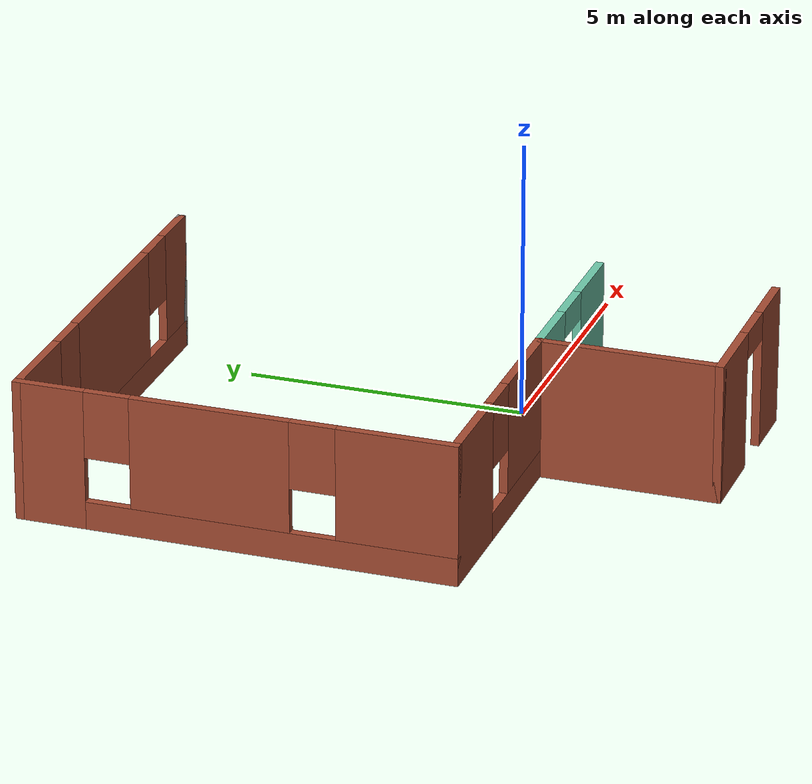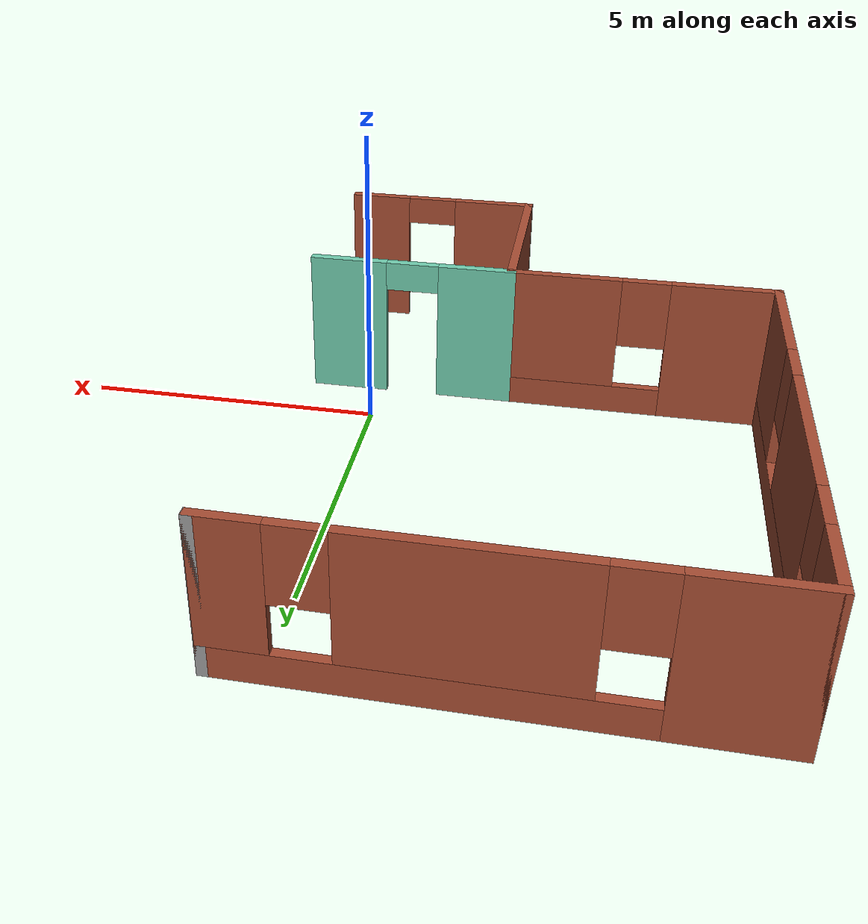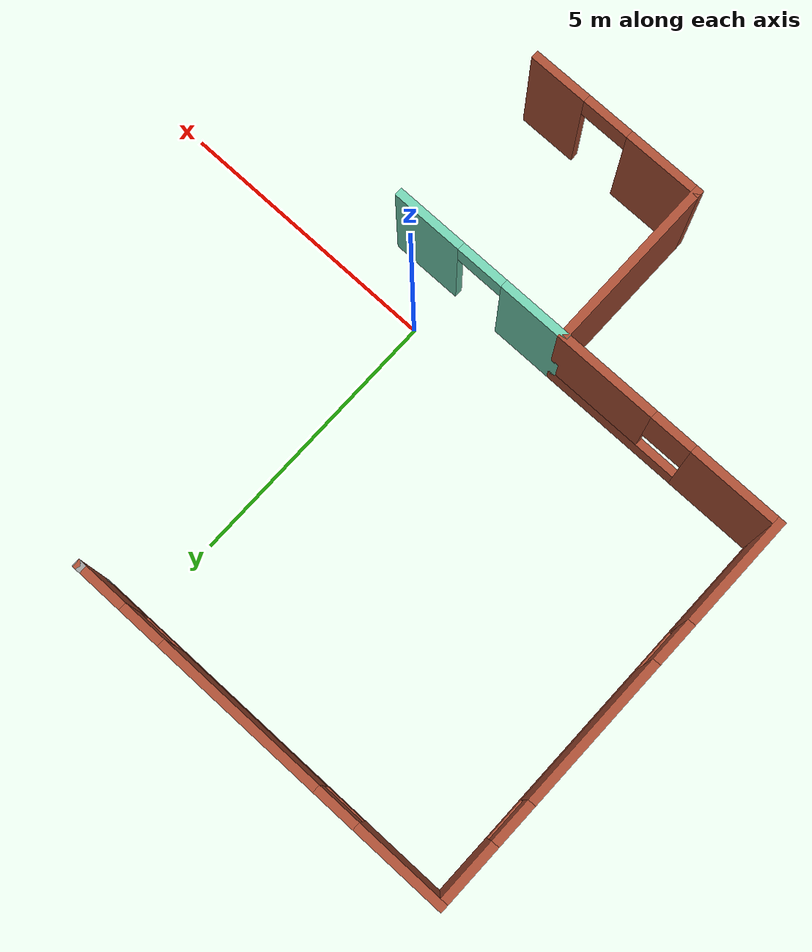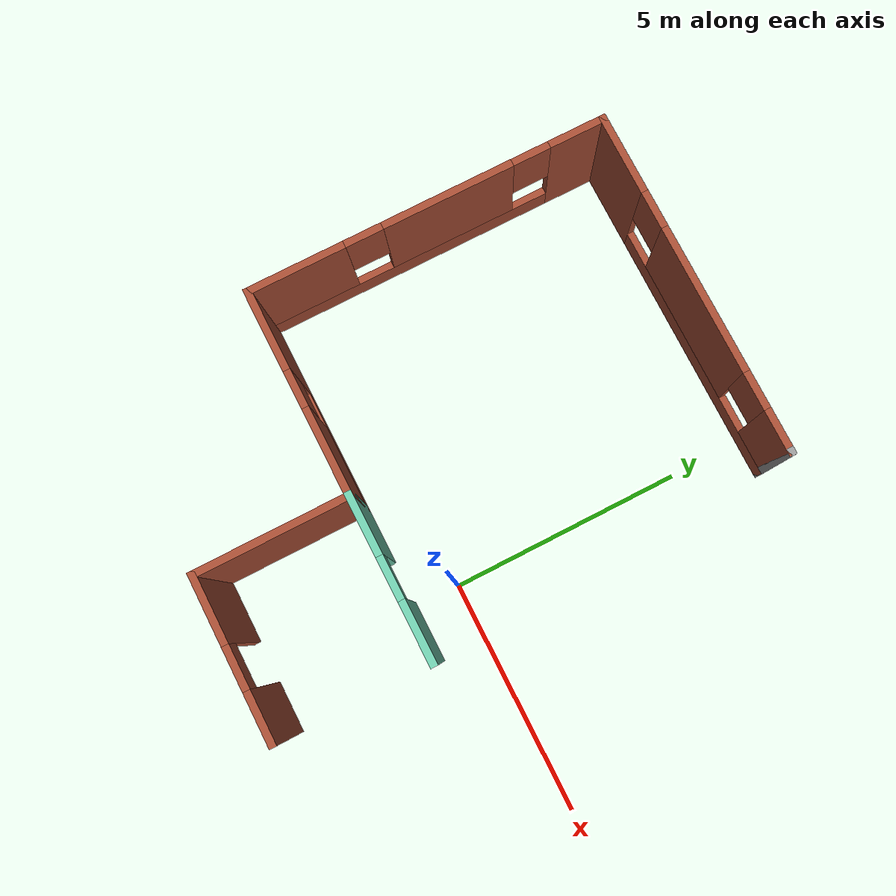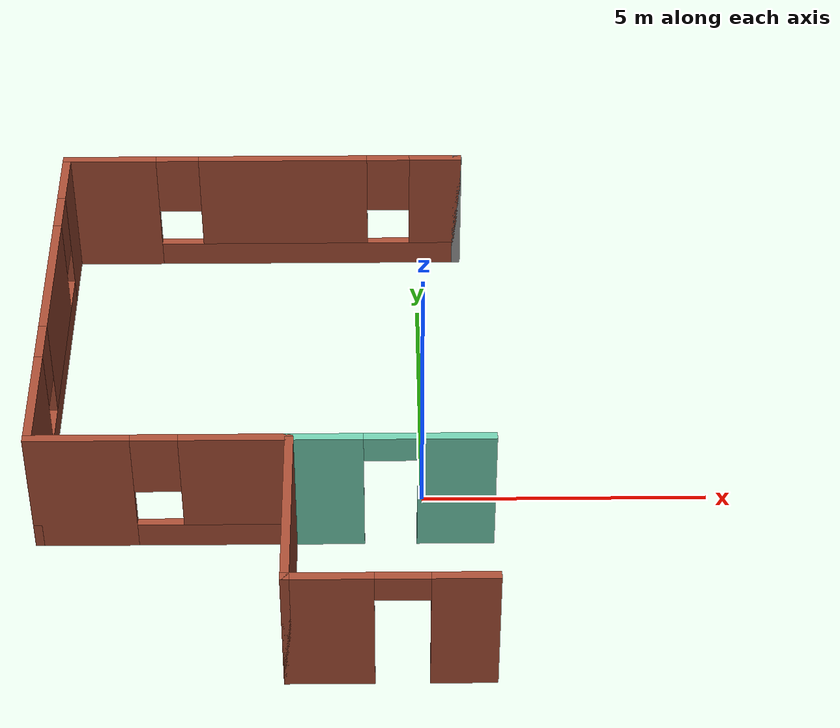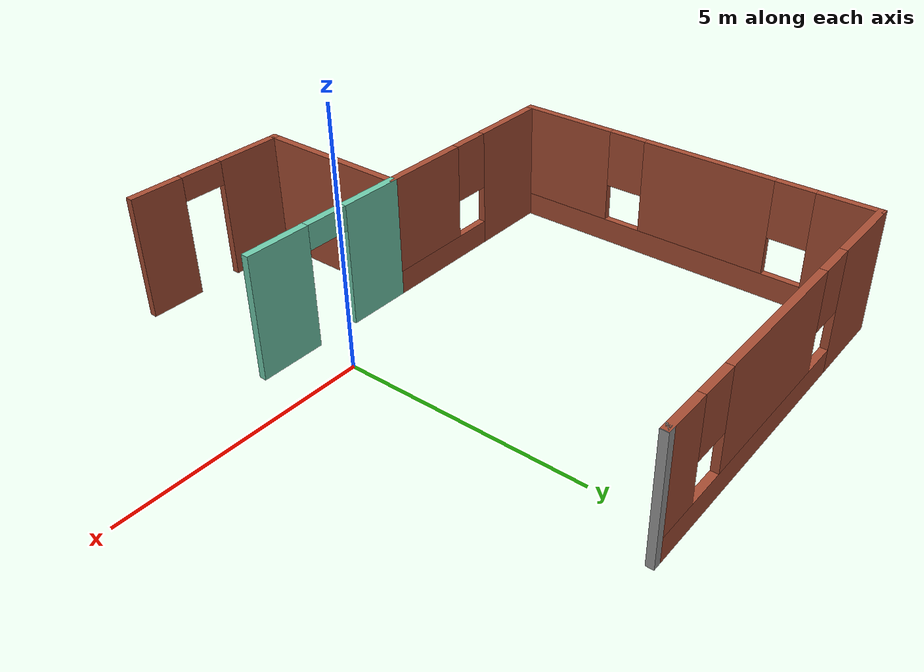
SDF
<sdf version="1.6">
 <model name="myWorld">
  <link name="Wall_0">
   <pose>-2.93 6.60073 0 0 -0 0</pose>
   <visual name="Wall_0_Visual_0">
    <pose>-2.87473 0 1.25 0 -0 0</pose>
    <geometry><box><size>1.75055 0.15 2.5</size></box></geometry>
    <material>
     <script><uri>file://media/materials/scripts/gazebo.material</uri><name>Gazebo/Bricks</name></script>
     <ambient>1 1 1 1</ambient>
    </material>
    <meta><layer>0</layer></meta>
   </visual>
   <visual name="Wall_0_Visual_1">
    <pose>0.875274 0 0.25 0 -0 0</pose>
    <geometry><box><size>5.74945 0.15 0.5</size></box></geometry>
    <material>
     <script><uri>file://media/materials/scripts/gazebo.material</uri><name>Gazebo/Bricks</name></script>
     <ambient>1 1 1 1</ambient>
    </material>
    <meta><layer>0</layer></meta>
   </visual>
   <visual name="Wall_0_Visual_2">
    <pose>0.388147 0 1.5 0 -0 0</pose>
    <geometry><box><size>3.1752 0.15 2</size></box></geometry>
    <material>
     <script><uri>file://media/materials/scripts/gazebo.material</uri><name>Gazebo/Bricks</name></script>
     <ambient>1 1 1 1</ambient>
    </material>
    <meta><layer>0</layer></meta>
   </visual>
   <visual name="Wall_0_Visual_3">
    <pose>3.26287 0 1.5 0 -0 0</pose>
    <geometry><box><size>0.974253 0.15 2</size></box></geometry>
    <material>
     <script><uri>file://media/materials/scripts/gazebo.material</uri><name>Gazebo/Bricks</name></script>
     <ambient>1 1 1 1</ambient>
    </material>
    <meta><layer>0</layer></meta>
   </visual>
   <visual name="Wall_0_Visual_4">
    <pose>-1.59945 0 1.9 0 -0 0</pose>
    <geometry><box><size>0.8 0.15 1.2</size></box></geometry>
    <material>
     <script><uri>file://media/materials/scripts/gazebo.material</uri><name>Gazebo/Bricks</name></script>
     <ambient>1 1 1 1</ambient>
    </material>
    <meta><layer>0</layer></meta>
   </visual>
   <visual name="Wall_0_Visual_5">
    <pose>2.37575 0 1.9 0 -0 0</pose>
    <geometry><box><size>0.8 0.15 1.2</size></box></geometry>
    <material>
     <script><uri>file://media/materials/scripts/gazebo.material</uri><name>Gazebo/Bricks</name></script>
     <ambient>1 1 1 1</ambient>
    </material>
    <meta><layer>0</layer></meta>
   </visual>
   <collision name="Wall_0_Collision_2">
    <pose>0.388147 0 1.5 0 -0 0</pose>
    <geometry><box><size>3.1752 0.15 2</size></box></geometry>
    <surface>
     <friction>
      <ode><mu>1</mu><mu2>1</mu2><fdir1>0 0 0</fdir1><slip1>0</slip1><slip2>0</slip2></ode>
      <torsional>
       <coefficient>1</coefficient>
       <patch_radius>0</patch_radius>
       <surface_radius>0</surface_radius>
       <use_patch_radius>1</use_patch_radius>
       <ode><slip>0</slip></ode>
      </torsional>
     </friction>
     <bounce><restitution_coefficient>0</restitution_coefficient><threshold>1e+06</threshold></bounce>
     <contact>
      <collide_without_contact>0</collide_without_contact>
      <collide_without_contact_bitmask>1</collide_without_contact_bitmask>
      <collide_bitmask>1</collide_bitmask>
      <ode>
       <soft_cfm>0</soft_cfm>
       <soft_erp>0.2</soft_erp>
       <kp>1e+13</kp>
       <kd>1</kd>
       <max_vel>0.01</max_vel>
       <min_depth>0</min_depth>
      </ode>
      <bullet>
       <split_impulse>1</split_impulse>
       <split_impulse_penetration_threshold>-0.01</split_impulse_penetration_threshold>
       <soft_cfm>0</soft_cfm>
       <soft_erp>0.2</soft_erp>
       <kp>1e+13</kp>
       <kd>1</kd>
      </bullet>
     </contact>
    </surface>
   </collision>
   <collision name="Wall_0_Collision_0">
    <pose>-2.87473 0 1.25 0 -0 0</pose>
    <geometry><box><size>1.75055 0.15 2.5</size></box></geometry>
    <surface>
     <friction>
      <ode><mu>1</mu><mu2>1</mu2><fdir1>0 0 0</fdir1><slip1>0</slip1><slip2>0</slip2></ode>
      <torsional>
       <coefficient>1</coefficient>
       <patch_radius>0</patch_radius>
       <surface_radius>0</surface_radius>
       <use_patch_radius>1</use_patch_radius>
       <ode><slip>0</slip></ode>
      </torsional>
     </friction>
     <bounce><restitution_coefficient>0</restitution_coefficient><threshold>1e+06</threshold></bounce>
     <contact>
      <collide_without_contact>0</collide_without_contact>
      <collide_without_contact_bitmask>1</collide_without_contact_bitmask>
      <collide_bitmask>1</collide_bitmask>
      <ode>
       <soft_cfm>0</soft_cfm>
       <soft_erp>0.2</soft_erp>
       <kp>1e+13</kp>
       <kd>1</kd>
       <max_vel>0.01</max_vel>
       <min_depth>0</min_depth>
      </ode>
      <bullet>
       <split_impulse>1</split_impulse>
       <split_impulse_penetration_threshold>-0.01</split_impulse_penetration_threshold>
       <soft_cfm>0</soft_cfm>
       <soft_erp>0.2</soft_erp>
       <kp>1e+13</kp>
       <kd>1</kd>
      </bullet>
     </contact>
    </surface>
   </collision>
   <collision name="Wall_0_Collision_1">
    <pose>0.875274 0 0.25 0 -0 0</pose>
    <geometry><box><size>5.74945 0.15 0.5</size></box></geometry>
    <surface>
     <friction>
      <ode><mu>1</mu><mu2>1</mu2><fdir1>0 0 0</fdir1><slip1>0</slip1><slip2>0</slip2></ode>
      <torsional>
       <coefficient>1</coefficient>
       <patch_radius>0</patch_radius>
       <surface_radius>0</surface_radius>
       <use_patch_radius>1</use_patch_radius>
       <ode><slip>0</slip></ode>
      </torsional>
     </friction>
     <bounce><restitution_coefficient>0</restitution_coefficient><threshold>1e+06</threshold></bounce>
     <contact>
      <collide_without_contact>0</collide_without_contact>
      <collide_without_contact_bitmask>1</collide_without_contact_bitmask>
      <collide_bitmask>1</collide_bitmask>
      <ode>
       <soft_cfm>0</soft_cfm>
       <soft_erp>0.2</soft_erp>
       <kp>1e+13</kp>
       <kd>1</kd>
       <max_vel>0.01</max_vel>
       <min_depth>0</min_depth>
      </ode>
      <bullet>
       <split_impulse>1</split_impulse>
       <split_impulse_penetration_threshold>-0.01</split_impulse_penetration_threshold>
       <soft_cfm>0</soft_cfm>
       <soft_erp>0.2</soft_erp>
       <kp>1e+13</kp>
       <kd>1</kd>
      </bullet>
     </contact>
    </surface>
   </collision>
   <collision name="Wall_0_Collision_3">
    <pose>3.26287 0 1.5 0 -0 0</pose>
    <geometry><box><size>0.974253 0.15 2</size></box></geometry>
    <surface>
     <friction>
      <ode><mu>1</mu><mu2>1</mu2><fdir1>0 0 0</fdir1><slip1>0</slip1><slip2>0</slip2></ode>
      <torsional>
       <coefficient>1</coefficient>
       <patch_radius>0</patch_radius>
       <surface_radius>0</surface_radius>
       <use_patch_radius>1</use_patch_radius>
       <ode><slip>0</slip></ode>
      </torsional>
     </friction>
     <bounce><restitution_coefficient>0</restitution_coefficient><threshold>1e+06</threshold></bounce>
     <contact>
      <collide_without_contact>0</collide_without_contact>
      <collide_without_contact_bitmask>1</collide_without_contact_bitmask>
      <collide_bitmask>1</collide_bitmask>
      <ode>
       <soft_cfm>0</soft_cfm>
       <soft_erp>0.2</soft_erp>
       <kp>1e+13</kp>
       <kd>1</kd>
       <max_vel>0.01</max_vel>
       <min_depth>0</min_depth>
      </ode>
      <bullet>
       <split_impulse>1</split_impulse>
       <split_impulse_penetration_threshold>-0.01</split_impulse_penetration_threshold>
       <soft_cfm>0</soft_cfm>
       <soft_erp>0.2</soft_erp>
       <kp>1e+13</kp>
       <kd>1</kd>
      </bullet>
     </contact>
    </surface>
   </collision>
   <collision name="Wall_0_Collision_4">
    <pose>-1.59945 0 1.9 0 -0 0</pose>
    <geometry><box><size>0.8 0.15 1.2</size></box></geometry>
    <surface>
     <friction>
      <ode><mu>1</mu><mu2>1</mu2><fdir1>0 0 0</fdir1><slip1>0</slip1><slip2>0</slip2></ode>
      <torsional>
       <coefficient>1</coefficient>
       <patch_radius>0</patch_radius>
       <surface_radius>0</surface_radius>
       <use_patch_radius>1</use_patch_radius>
       <ode><slip>0</slip></ode>
      </torsional>
     </friction>
     <bounce><restitution_coefficient>0</restitution_coefficient><threshold>1e+06</threshold></bounce>
     <contact>
      <collide_without_contact>0</collide_without_contact>
      <collide_without_contact_bitmask>1</collide_without_contact_bitmask>
      <collide_bitmask>1</collide_bitmask>
      <ode>
       <soft_cfm>0</soft_cfm>
       <soft_erp>0.2</soft_erp>
       <kp>1e+13</kp>
       <kd>1</kd>
       <max_vel>0.01</max_vel>
       <min_depth>0</min_depth>
      </ode>
      <bullet>
       <split_impulse>1</split_impulse>
       <split_impulse_penetration_threshold>-0.01</split_impulse_penetration_threshold>
       <soft_cfm>0</soft_cfm>
       <soft_erp>0.2</soft_erp>
       <kp>1e+13</kp>
       <kd>1</kd>
      </bullet>
     </contact>
    </surface>
   </collision>
   <collision name="Wall_0_Collision_5">
    <pose>2.37575 0 1.9 0 -0 0</pose>
    <geometry><box><size>0.8 0.15 1.2</size></box></geometry>
    <surface>
     <friction>
      <ode><mu>1</mu><mu2>1</mu2><fdir1>0 0 0</fdir1><slip1>0</slip1><slip2>0</slip2></ode>
      <torsional>
       <coefficient>1</coefficient>
       <patch_radius>0</patch_radius>
       <surface_radius>0</surface_radius>
       <use_patch_radius>1</use_patch_radius>
       <ode><slip>0</slip></ode>
      </torsional>
     </friction>
     <bounce><restitution_coefficient>0</restitution_coefficient><threshold>1e+06</threshold></bounce>
     <contact>
      <collide_without_contact>0</collide_without_contact>
      <collide_without_contact_bitmask>1</collide_without_contact_bitmask>
      <collide_bitmask>1</collide_bitmask>
      <ode>
       <soft_cfm>0</soft_cfm>
       <soft_erp>0.2</soft_erp>
       <kp>1e+13</kp>
       <kd>1</kd>
       <max_vel>0.01</max_vel>
       <min_depth>0</min_depth>
      </ode>
      <bullet>
       <split_impulse>1</split_impulse>
       <split_impulse_penetration_threshold>-0.01</split_impulse_penetration_threshold>
       <soft_cfm>0</soft_cfm>
       <soft_erp>0.2</soft_erp>
       <kp>1e+13</kp>
       <kd>1</kd>
      </bullet>
     </contact>
    </surface>
   </collision>
  </link>
  <link name="Wall_1">
   <pose>0.75 6.60073 0 0 -0 0</pose>
   <visual name="Wall_1_Visual">
    <pose>0 0 1.25 0 -0 0</pose>
    <geometry><box><size>0.16 0.15 2.5</size></box></geometry>
    <material>
     <script><uri>file://media/materials/scripts/gazebo.material</uri><name>Gazebo/Grey</name></script>
     <ambient>1 1 1 1</ambient>
    </material>
    <meta><layer>0</layer></meta>
   </visual>
   <collision name="Wall_1_Collision">
    <pose>0 0 1.25 0 -0 0</pose>
    <geometry><box><size>0.16 0.15 2.5</size></box></geometry>
    <surface>
     <friction>
      <ode><mu>1</mu><mu2>1</mu2><fdir1>0 0 0</fdir1><slip1>0</slip1><slip2>0</slip2></ode>
      <torsional>
       <coefficient>1</coefficient>
       <patch_radius>0</patch_radius>
       <surface_radius>0</surface_radius>
       <use_patch_radius>1</use_patch_radius>
       <ode><slip>0</slip></ode>
      </torsional>
     </friction>
     <bounce><restitution_coefficient>0</restitution_coefficient><threshold>1e+06</threshold></bounce>
     <contact>
      <collide_without_contact>0</collide_without_contact>
      <collide_without_contact_bitmask>1</collide_without_contact_bitmask>
      <collide_bitmask>1</collide_bitmask>
      <ode>
       <soft_cfm>0</soft_cfm>
       <soft_erp>0.2</soft_erp>
       <kp>1e+13</kp>
       <kd>1</kd>
       <max_vel>0.01</max_vel>
       <min_depth>0</min_depth>
      </ode>
      <bullet>
       <split_impulse>1</split_impulse>
       <split_impulse_penetration_threshold>-0.01</split_impulse_penetration_threshold>
       <soft_cfm>0</soft_cfm>
       <soft_erp>0.2</soft_erp>
       <kp>1e+13</kp>
       <kd>1</kd>
      </bullet>
     </contact>
    </surface>
   </collision>
  </link>
  <link name="Wall_24">
   <pose>-6.605 2.80073 0 0 0 -1.5708</pose>
   <visual name="Wall_24_Visual_0">
    <pose>-3.24598 0 1.25 0 -0 0</pose>
    <geometry><box><size>1.25804 0.15 2.5</size></box></geometry>
    <material>
     <script><uri>file://media/materials/scripts/gazebo.material</uri><name>Gazebo/Bricks</name></script>
     <ambient>1 1 1 1</ambient>
    </material>
    <meta><layer>0</layer></meta>
   </visual>
   <visual name="Wall_24_Visual_1">
    <pose>0.629022 0 0.25 0 -0 0</pose>
    <geometry><box><size>6.49196 0.15 0.5</size></box></geometry>
    <material>
     <script><uri>file://media/materials/scripts/gazebo.material</uri><name>Gazebo/Bricks</name></script>
     <ambient>1 1 1 1</ambient>
    </material>
    <meta><layer>0</layer></meta>
   </visual>
   <visual name="Wall_24_Visual_2">
    <pose>-0.422839 0 1.5 0 -0 0</pose>
    <geometry><box><size>2.78823 0.15 2</size></box></geometry>
    <material>
     <script><uri>file://media/materials/scripts/gazebo.material</uri><name>Gazebo/Bricks</name></script>
     <ambient>1 1 1 1</ambient>
    </material>
    <meta><layer>0</layer></meta>
   </visual>
   <visual name="Wall_24_Visual_3">
    <pose>2.82314 0 1.5 0 -0 0</pose>
    <geometry><box><size>2.10372 0.15 2</size></box></geometry>
    <material>
     <script><uri>file://media/materials/scripts/gazebo.material</uri><name>Gazebo/Bricks</name></script>
     <ambient>1 1 1 1</ambient>
    </material>
    <meta><layer>0</layer></meta>
   </visual>
   <visual name="Wall_24_Visual_4">
    <pose>-2.21696 0 1.9 0 -0 0</pose>
    <geometry><box><size>0.8 0.15 1.2</size></box></geometry>
    <material>
     <script><uri>file://media/materials/scripts/gazebo.material</uri><name>Gazebo/Bricks</name></script>
     <ambient>1 1 1 1</ambient>
    </material>
    <meta><layer>0</layer></meta>
   </visual>
   <visual name="Wall_24_Visual_5">
    <pose>1.37128 0 1.9 0 -0 0</pose>
    <geometry><box><size>0.8 0.15 1.2</size></box></geometry>
    <material>
     <script><uri>file://media/materials/scripts/gazebo.material</uri><name>Gazebo/Bricks</name></script>
     <ambient>1 1 1 1</ambient>
    </material>
    <meta><layer>0</layer></meta>
   </visual>
   <collision name="Wall_24_Collision_0">
    <pose>-3.24598 0 1.25 0 -0 0</pose>
    <geometry><box><size>1.25804 0.15 2.5</size></box></geometry>
    <surface>
     <friction>
      <ode><mu>1</mu><mu2>1</mu2><fdir1>0 0 0</fdir1><slip1>0</slip1><slip2>0</slip2></ode>
      <torsional>
       <coefficient>1</coefficient>
       <patch_radius>0</patch_radius>
       <surface_radius>0</surface_radius>
       <use_patch_radius>1</use_patch_radius>
       <ode><slip>0</slip></ode>
      </torsional>
     </friction>
     <bounce><restitution_coefficient>0</restitution_coefficient><threshold>1e+06</threshold></bounce>
     <contact>
      <collide_without_contact>0</collide_without_contact>
      <collide_without_contact_bitmask>1</collide_without_contact_bitmask>
      <collide_bitmask>1</collide_bitmask>
      <ode>
       <soft_cfm>0</soft_cfm>
       <soft_erp>0.2</soft_erp>
       <kp>1e+13</kp>
       <kd>1</kd>
       <max_vel>0.01</max_vel>
       <min_depth>0</min_depth>
      </ode>
      <bullet>
       <split_impulse>1</split_impulse>
       <split_impulse_penetration_threshold>-0.01</split_impulse_penetration_threshold>
       <soft_cfm>0</soft_cfm>
       <soft_erp>0.2</soft_erp>
       <kp>1e+13</kp>
       <kd>1</kd>
      </bullet>
     </contact>
    </surface>
   </collision>
   <collision name="Wall_24_Collision_1">
    <pose>0.629022 0 0.25 0 -0 0</pose>
    <geometry><box><size>6.49196 0.15 0.5</size></box></geometry>
    <surface>
     <friction>
      <ode><mu>1</mu><mu2>1</mu2><fdir1>0 0 0</fdir1><slip1>0</slip1><slip2>0</slip2></ode>
      <torsional>
       <coefficient>1</coefficient>
       <patch_radius>0</patch_radius>
       <surface_radius>0</surface_radius>
       <use_patch_radius>1</use_patch_radius>
       <ode><slip>0</slip></ode>
      </torsional>
     </friction>
     <bounce><restitution_coefficient>0</restitution_coefficient><threshold>1e+06</threshold></bounce>
     <contact>
      <collide_without_contact>0</collide_without_contact>
      <collide_without_contact_bitmask>1</collide_without_contact_bitmask>
      <collide_bitmask>1</collide_bitmask>
      <ode>
       <soft_cfm>0</soft_cfm>
       <soft_erp>0.2</soft_erp>
       <kp>1e+13</kp>
       <kd>1</kd>
       <max_vel>0.01</max_vel>
       <min_depth>0</min_depth>
      </ode>
      <bullet>
       <split_impulse>1</split_impulse>
       <split_impulse_penetration_threshold>-0.01</split_impulse_penetration_threshold>
       <soft_cfm>0</soft_cfm>
       <soft_erp>0.2</soft_erp>
       <kp>1e+13</kp>
       <kd>1</kd>
      </bullet>
     </contact>
    </surface>
   </collision>
   <collision name="Wall_24_Collision_2">
    <pose>-0.422839 0 1.5 0 -0 0</pose>
    <geometry><box><size>2.78823 0.15 2</size></box></geometry>
    <surface>
     <friction>
      <ode><mu>1</mu><mu2>1</mu2><fdir1>0 0 0</fdir1><slip1>0</slip1><slip2>0</slip2></ode>
      <torsional>
       <coefficient>1</coefficient>
       <patch_radius>0</patch_radius>
       <surface_radius>0</surface_radius>
       <use_patch_radius>1</use_patch_radius>
       <ode><slip>0</slip></ode>
      </torsional>
     </friction>
     <bounce><restitution_coefficient>0</restitution_coefficient><threshold>1e+06</threshold></bounce>
     <contact>
      <collide_without_contact>0</collide_without_contact>
      <collide_without_contact_bitmask>1</collide_without_contact_bitmask>
      <collide_bitmask>1</collide_bitmask>
      <ode>
       <soft_cfm>0</soft_cfm>
       <soft_erp>0.2</soft_erp>
       <kp>1e+13</kp>
       <kd>1</kd>
       <max_vel>0.01</max_vel>
       <min_depth>0</min_depth>
      </ode>
      <bullet>
       <split_impulse>1</split_impulse>
       <split_impulse_penetration_threshold>-0.01</split_impulse_penetration_threshold>
       <soft_cfm>0</soft_cfm>
       <soft_erp>0.2</soft_erp>
       <kp>1e+13</kp>
       <kd>1</kd>
      </bullet>
     </contact>
    </surface>
   </collision>
   <collision name="Wall_24_Collision_3">
    <pose>2.82314 0 1.5 0 -0 0</pose>
    <geometry><box><size>2.10372 0.15 2</size></box></geometry>
    <surface>
     <friction>
      <ode><mu>1</mu><mu2>1</mu2><fdir1>0 0 0</fdir1><slip1>0</slip1><slip2>0</slip2></ode>
      <torsional>
       <coefficient>1</coefficient>
       <patch_radius>0</patch_radius>
       <surface_radius>0</surface_radius>
       <use_patch_radius>1</use_patch_radius>
       <ode><slip>0</slip></ode>
      </torsional>
     </friction>
     <bounce><restitution_coefficient>0</restitution_coefficient><threshold>1e+06</threshold></bounce>
     <contact>
      <collide_without_contact>0</collide_without_contact>
      <collide_without_contact_bitmask>1</collide_without_contact_bitmask>
      <collide_bitmask>1</collide_bitmask>
      <ode>
       <soft_cfm>0</soft_cfm>
       <soft_erp>0.2</soft_erp>
       <kp>1e+13</kp>
       <kd>1</kd>
       <max_vel>0.01</max_vel>
       <min_depth>0</min_depth>
      </ode>
      <bullet>
       <split_impulse>1</split_impulse>
       <split_impulse_penetration_threshold>-0.01</split_impulse_penetration_threshold>
       <soft_cfm>0</soft_cfm>
       <soft_erp>0.2</soft_erp>
       <kp>1e+13</kp>
       <kd>1</kd>
      </bullet>
     </contact>
    </surface>
   </collision>
   <collision name="Wall_24_Collision_4">
    <pose>-2.21696 0 1.9 0 -0 0</pose>
    <geometry><box><size>0.8 0.15 1.2</size></box></geometry>
    <surface>
     <friction>
      <ode><mu>1</mu><mu2>1</mu2><fdir1>0 0 0</fdir1><slip1>0</slip1><slip2>0</slip2></ode>
      <torsional>
       <coefficient>1</coefficient>
       <patch_radius>0</patch_radius>
       <surface_radius>0</surface_radius>
       <use_patch_radius>1</use_patch_radius>
       <ode><slip>0</slip></ode>
      </torsional>
     </friction>
     <bounce><restitution_coefficient>0</restitution_coefficient><threshold>1e+06</threshold></bounce>
     <contact>
      <collide_without_contact>0</collide_without_contact>
      <collide_without_contact_bitmask>1</collide_without_contact_bitmask>
      <collide_bitmask>1</collide_bitmask>
      <ode>
       <soft_cfm>0</soft_cfm>
       <soft_erp>0.2</soft_erp>
       <kp>1e+13</kp>
       <kd>1</kd>
       <max_vel>0.01</max_vel>
       <min_depth>0</min_depth>
      </ode>
      <bullet>
       <split_impulse>1</split_impulse>
       <split_impulse_penetration_threshold>-0.01</split_impulse_penetration_threshold>
       <soft_cfm>0</soft_cfm>
       <soft_erp>0.2</soft_erp>
       <kp>1e+13</kp>
       <kd>1</kd>
      </bullet>
     </contact>
    </surface>
   </collision>
   <collision name="Wall_24_Collision_5">
    <pose>1.37128 0 1.9 0 -0 0</pose>
    <geometry><box><size>0.8 0.15 1.2</size></box></geometry>
    <surface>
     <friction>
      <ode><mu>1</mu><mu2>1</mu2><fdir1>0 0 0</fdir1><slip1>0</slip1><slip2>0</slip2></ode>
      <torsional>
       <coefficient>1</coefficient>
       <patch_radius>0</patch_radius>
       <surface_radius>0</surface_radius>
       <use_patch_radius>1</use_patch_radius>
       <ode><slip>0</slip></ode>
      </torsional>
     </friction>
     <bounce><restitution_coefficient>0</restitution_coefficient><threshold>1e+06</threshold></bounce>
     <contact>
      <collide_without_contact>0</collide_without_contact>
      <collide_without_contact_bitmask>1</collide_without_contact_bitmask>
      <collide_bitmask>1</collide_bitmask>
      <ode>
       <soft_cfm>0</soft_cfm>
       <soft_erp>0.2</soft_erp>
       <kp>1e+13</kp>
       <kd>1</kd>
       <max_vel>0.01</max_vel>
       <min_depth>0</min_depth>
      </ode>
      <bullet>
       <split_impulse>1</split_impulse>
       <split_impulse_penetration_threshold>-0.01</split_impulse_penetration_threshold>
       <soft_cfm>0</soft_cfm>
       <soft_erp>0.2</soft_erp>
       <kp>1e+13</kp>
       <kd>1</kd>
      </bullet>
     </contact>
    </surface>
   </collision>
  </link>
  <link name="Wall_35">
   <pose>-2.24283 -2.61397 0 0 -0 1.5708</pose>
   <visual name="Wall_35_Visual">
    <pose>0 0 1.25 0 -0 0</pose>
    <geometry><box><size>3.25 0.15 2.5</size></box></geometry>
    <material>
     <script><uri>file://media/materials/scripts/gazebo.material</uri><name>Gazebo/Bricks</name></script>
     <ambient>1 1 1 1</ambient>
    </material>
    <meta><layer>0</layer></meta>
   </visual>
   <collision name="Wall_35_Collision">
    <pose>0 0 1.25 0 -0 0</pose>
    <geometry><box><size>3.25 0.15 2.5</size></box></geometry>
    <surface>
     <friction>
      <ode><mu>1</mu><mu2>1</mu2><fdir1>0 0 0</fdir1><slip1>0</slip1><slip2>0</slip2></ode>
      <torsional>
       <coefficient>1</coefficient>
       <patch_radius>0</patch_radius>
       <surface_radius>0</surface_radius>
       <use_patch_radius>1</use_patch_radius>
       <ode><slip>0</slip></ode>
      </torsional>
     </friction>
     <bounce><restitution_coefficient>0</restitution_coefficient><threshold>1e+06</threshold></bounce>
     <contact>
      <collide_without_contact>0</collide_without_contact>
      <collide_without_contact_bitmask>1</collide_without_contact_bitmask>
      <collide_bitmask>1</collide_bitmask>
      <ode>
       <soft_cfm>0</soft_cfm>
       <soft_erp>0.2</soft_erp>
       <kp>1e+13</kp>
       <kd>1</kd>
       <max_vel>0.01</max_vel>
       <min_depth>0</min_depth>
      </ode>
      <bullet>
       <split_impulse>1</split_impulse>
       <split_impulse_penetration_threshold>-0.01</split_impulse_penetration_threshold>
       <soft_cfm>0</soft_cfm>
       <soft_erp>0.2</soft_erp>
       <kp>1e+13</kp>
       <kd>1</kd>
      </bullet>
     </contact>
    </surface>
   </collision>
  </link>
  <link name="Wall_48">
   <pose>-4.43 -0.999271 0 0 -0 0</pose>
   <visual name="Wall_48_Visual_0">
    <pose>-1.35714 0 1.25 0 -0 0</pose>
    <geometry><box><size>1.78573 0.15 2.5</size></box></geometry>
    <material>
     <script><uri>file://media/materials/scripts/gazebo.material</uri><name>Gazebo/Bricks</name></script>
     <ambient>1 1 1 1</ambient>
    </material>
    <meta><layer>0</layer></meta>
   </visual>
   <visual name="Wall_48_Visual_1">
    <pose>0.892863 0 0.25 0 -0 0</pose>
    <geometry><box><size>2.71427 0.15 0.5</size></box></geometry>
    <material>
     <script><uri>file://media/materials/scripts/gazebo.material</uri><name>Gazebo/Bricks</name></script>
     <ambient>1 1 1 1</ambient>
    </material>
    <meta><layer>0</layer></meta>
   </visual>
   <visual name="Wall_48_Visual_2">
    <pose>1.29286 0 1.5 0 -0 0</pose>
    <geometry><box><size>1.91427 0.15 2</size></box></geometry>
    <material>
     <script><uri>file://media/materials/scripts/gazebo.material</uri><name>Gazebo/Bricks</name></script>
     <ambient>1 1 1 1</ambient>
    </material>
    <meta><layer>0</layer></meta>
   </visual>
   <visual name="Wall_48_Visual_3">
    <pose>-0.064274 0 1.9 0 -0 0</pose>
    <geometry><box><size>0.8 0.15 1.2</size></box></geometry>
    <material>
     <script><uri>file://media/materials/scripts/gazebo.material</uri><name>Gazebo/Bricks</name></script>
     <ambient>1 1 1 1</ambient>
    </material>
    <meta><layer>0</layer></meta>
   </visual>
   <collision name="Wall_48_Collision_0">
    <pose>-1.35714 0 1.25 0 -0 0</pose>
    <geometry><box><size>1.78573 0.15 2.5</size></box></geometry>
    <surface>
     <friction>
      <ode><mu>1</mu><mu2>1</mu2><fdir1>0 0 0</fdir1><slip1>0</slip1><slip2>0</slip2></ode>
      <torsional>
       <coefficient>1</coefficient>
       <patch_radius>0</patch_radius>
       <surface_radius>0</surface_radius>
       <use_patch_radius>1</use_patch_radius>
       <ode><slip>0</slip></ode>
      </torsional>
     </friction>
     <bounce><restitution_coefficient>0</restitution_coefficient><threshold>1e+06</threshold></bounce>
     <contact>
      <collide_without_contact>0</collide_without_contact>
      <collide_without_contact_bitmask>1</collide_without_contact_bitmask>
      <collide_bitmask>1</collide_bitmask>
      <ode>
       <soft_cfm>0</soft_cfm>
       <soft_erp>0.2</soft_erp>
       <kp>1e+13</kp>
       <kd>1</kd>
       <max_vel>0.01</max_vel>
       <min_depth>0</min_depth>
      </ode>
      <bullet>
       <split_impulse>1</split_impulse>
       <split_impulse_penetration_threshold>-0.01</split_impulse_penetration_threshold>
       <soft_cfm>0</soft_cfm>
       <soft_erp>0.2</soft_erp>
       <kp>1e+13</kp>
       <kd>1</kd>
      </bullet>
     </contact>
    </surface>
   </collision>
   <collision name="Wall_48_Collision_1">
    <pose>0.892863 0 0.25 0 -0 0</pose>
    <geometry><box><size>2.71427 0.15 0.5</size></box></geometry>
    <surface>
     <friction>
      <ode><mu>1</mu><mu2>1</mu2><fdir1>0 0 0</fdir1><slip1>0</slip1><slip2>0</slip2></ode>
      <torsional>
       <coefficient>1</coefficient>
       <patch_radius>0</patch_radius>
       <surface_radius>0</surface_radius>
       <use_patch_radius>1</use_patch_radius>
       <ode><slip>0</slip></ode>
      </torsional>
     </friction>
     <bounce><restitution_coefficient>0</restitution_coefficient><threshold>1e+06</threshold></bounce>
     <contact>
      <collide_without_contact>0</collide_without_contact>
      <collide_without_contact_bitmask>1</collide_without_contact_bitmask>
      <collide_bitmask>1</collide_bitmask>
      <ode>
       <soft_cfm>0</soft_cfm>
       <soft_erp>0.2</soft_erp>
       <kp>1e+13</kp>
       <kd>1</kd>
       <max_vel>0.01</max_vel>
       <min_depth>0</min_depth>
      </ode>
      <bullet>
       <split_impulse>1</split_impulse>
       <split_impulse_penetration_threshold>-0.01</split_impulse_penetration_threshold>
       <soft_cfm>0</soft_cfm>
       <soft_erp>0.2</soft_erp>
       <kp>1e+13</kp>
       <kd>1</kd>
      </bullet>
     </contact>
    </surface>
   </collision>
   <collision name="Wall_48_Collision_2">
    <pose>1.29286 0 1.5 0 -0 0</pose>
    <geometry><box><size>1.91427 0.15 2</size></box></geometry>
    <surface>
     <friction>
      <ode><mu>1</mu><mu2>1</mu2><fdir1>0 0 0</fdir1><slip1>0</slip1><slip2>0</slip2></ode>
      <torsional>
       <coefficient>1</coefficient>
       <patch_radius>0</patch_radius>
       <surface_radius>0</surface_radius>
       <use_patch_radius>1</use_patch_radius>
       <ode><slip>0</slip></ode>
      </torsional>
     </friction>
     <bounce><restitution_coefficient>0</restitution_coefficient><threshold>1e+06</threshold></bounce>
     <contact>
      <collide_without_contact>0</collide_without_contact>
      <collide_without_contact_bitmask>1</collide_without_contact_bitmask>
      <collide_bitmask>1</collide_bitmask>
      <ode>
       <soft_cfm>0</soft_cfm>
       <soft_erp>0.2</soft_erp>
       <kp>1e+13</kp>
       <kd>1</kd>
       <max_vel>0.01</max_vel>
       <min_depth>0</min_depth>
      </ode>
      <bullet>
       <split_impulse>1</split_impulse>
       <split_impulse_penetration_threshold>-0.01</split_impulse_penetration_threshold>
       <soft_cfm>0</soft_cfm>
       <soft_erp>0.2</soft_erp>
       <kp>1e+13</kp>
       <kd>1</kd>
      </bullet>
     </contact>
    </surface>
   </collision>
   <collision name="Wall_48_Collision_3">
    <pose>-0.064274 0 1.9 0 -0 0</pose>
    <geometry><box><size>0.8 0.15 1.2</size></box></geometry>
    <surface>
     <friction>
      <ode><mu>1</mu><mu2>1</mu2><fdir1>0 0 0</fdir1><slip1>0</slip1><slip2>0</slip2></ode>
      <torsional>
       <coefficient>1</coefficient>
       <patch_radius>0</patch_radius>
       <surface_radius>0</surface_radius>
       <use_patch_radius>1</use_patch_radius>
       <ode><slip>0</slip></ode>
      </torsional>
     </friction>
     <bounce><restitution_coefficient>0</restitution_coefficient><threshold>1e+06</threshold></bounce>
     <contact>
      <collide_without_contact>0</collide_without_contact>
      <collide_without_contact_bitmask>1</collide_without_contact_bitmask>
      <collide_bitmask>1</collide_bitmask>
      <ode>
       <soft_cfm>0</soft_cfm>
       <soft_erp>0.2</soft_erp>
       <kp>1e+13</kp>
       <kd>1</kd>
       <max_vel>0.01</max_vel>
       <min_depth>0</min_depth>
      </ode>
      <bullet>
       <split_impulse>1</split_impulse>
       <split_impulse_penetration_threshold>-0.01</split_impulse_penetration_threshold>
       <soft_cfm>0</soft_cfm>
       <soft_erp>0.2</soft_erp>
       <kp>1e+13</kp>
       <kd>1</kd>
      </bullet>
     </contact>
    </surface>
   </collision>
  </link>
  <link name="Wall_49">
   <pose>-0.55 -0.999271 0 0 -0 0</pose>
   <visual name="Wall_49_Visual_0">
    <pose>-1.11713 0 1.25 0 -0 0</pose>
    <geometry><box><size>1.32575 0.15 2.5</size></box></geometry>
    <material>
     <script><uri>file://media/materials/scripts/gazebo.material</uri><name>Gazebo/Grey</name></script>
     <ambient>0.435294 0.796078 0.67451 1</ambient>
    </material>
    <meta><layer>0</layer></meta>
   </visual>
   <visual name="Wall_49_Visual_1">
    <pose>1.11287 0 1.25 0 -0 0</pose>
    <geometry><box><size>1.33425 0.15 2.5</size></box></geometry>
    <material>
     <script><uri>file://media/materials/scripts/gazebo.material</uri><name>Gazebo/Grey</name></script>
     <ambient>0.435294 0.796078 0.67451 1</ambient>
    </material>
    <meta><layer>0</layer></meta>
   </visual>
   <visual name="Wall_49_Visual_2">
    <pose>-0.004253 0 2.25 0 -0 0</pose>
    <geometry><box><size>0.9 0.15 0.5</size></box></geometry>
    <material>
     <script><uri>file://media/materials/scripts/gazebo.material</uri><name>Gazebo/Grey</name></script>
     <ambient>0.435294 0.796078 0.67451 1</ambient>
    </material>
    <meta><layer>0</layer></meta>
   </visual>
   <collision name="Wall_49_Collision_0">
    <pose>-1.11713 0 1.25 0 -0 0</pose>
    <geometry><box><size>1.32575 0.15 2.5</size></box></geometry>
    <surface>
     <friction>
      <ode><mu>1</mu><mu2>1</mu2><fdir1>0 0 0</fdir1><slip1>0</slip1><slip2>0</slip2></ode>
      <torsional>
       <coefficient>1</coefficient>
       <patch_radius>0</patch_radius>
       <surface_radius>0</surface_radius>
       <use_patch_radius>1</use_patch_radius>
       <ode><slip>0</slip></ode>
      </torsional>
     </friction>
     <bounce><restitution_coefficient>0</restitution_coefficient><threshold>1e+06</threshold></bounce>
     <contact>
      <collide_without_contact>0</collide_without_contact>
      <collide_without_contact_bitmask>1</collide_without_contact_bitmask>
      <collide_bitmask>1</collide_bitmask>
      <ode>
       <soft_cfm>0</soft_cfm>
       <soft_erp>0.2</soft_erp>
       <kp>1e+13</kp>
       <kd>1</kd>
       <max_vel>0.01</max_vel>
       <min_depth>0</min_depth>
      </ode>
      <bullet>
       <split_impulse>1</split_impulse>
       <split_impulse_penetration_threshold>-0.01</split_impulse_penetration_threshold>
       <soft_cfm>0</soft_cfm>
       <soft_erp>0.2</soft_erp>
       <kp>1e+13</kp>
       <kd>1</kd>
      </bullet>
     </contact>
    </surface>
   </collision>
   <collision name="Wall_49_Collision_1">
    <pose>1.11287 0 1.25 0 -0 0</pose>
    <geometry><box><size>1.33425 0.15 2.5</size></box></geometry>
    <surface>
     <friction>
      <ode><mu>1</mu><mu2>1</mu2><fdir1>0 0 0</fdir1><slip1>0</slip1><slip2>0</slip2></ode>
      <torsional>
       <coefficient>1</coefficient>
       <patch_radius>0</patch_radius>
       <surface_radius>0</surface_radius>
       <use_patch_radius>1</use_patch_radius>
       <ode><slip>0</slip></ode>
      </torsional>
     </friction>
     <bounce><restitution_coefficient>0</restitution_coefficient><threshold>1e+06</threshold></bounce>
     <contact>
      <collide_without_contact>0</collide_without_contact>
      <collide_without_contact_bitmask>1</collide_without_contact_bitmask>
      <collide_bitmask>1</collide_bitmask>
      <ode>
       <soft_cfm>0</soft_cfm>
       <soft_erp>0.2</soft_erp>
       <kp>1e+13</kp>
       <kd>1</kd>
       <max_vel>0.01</max_vel>
       <min_depth>0</min_depth>
      </ode>
      <bullet>
       <split_impulse>1</split_impulse>
       <split_impulse_penetration_threshold>-0.01</split_impulse_penetration_threshold>
       <soft_cfm>0</soft_cfm>
       <soft_erp>0.2</soft_erp>
       <kp>1e+13</kp>
       <kd>1</kd>
      </bullet>
     </contact>
    </surface>
   </collision>
   <collision name="Wall_49_Collision_2">
    <pose>-0.004253 0 2.25 0 -0 0</pose>
    <geometry><box><size>0.9 0.15 0.5</size></box></geometry>
    <surface>
     <friction>
      <ode><mu>1</mu><mu2>1</mu2><fdir1>0 0 0</fdir1><slip1>0</slip1><slip2>0</slip2></ode>
      <torsional>
       <coefficient>1</coefficient>
       <patch_radius>0</patch_radius>
       <surface_radius>0</surface_radius>
       <use_patch_radius>1</use_patch_radius>
       <ode><slip>0</slip></ode>
      </torsional>
     </friction>
     <bounce><restitution_coefficient>0</restitution_coefficient><threshold>1e+06</threshold></bounce>
     <contact>
      <collide_without_contact>0</collide_without_contact>
      <collide_without_contact_bitmask>1</collide_without_contact_bitmask>
      <collide_bitmask>1</collide_bitmask>
      <ode>
       <soft_cfm>0</soft_cfm>
       <soft_erp>0.2</soft_erp>
       <kp>1e+13</kp>
       <kd>1</kd>
       <max_vel>0.01</max_vel>
       <min_depth>0</min_depth>
      </ode>
      <bullet>
       <split_impulse>1</split_impulse>
       <split_impulse_penetration_threshold>-0.01</split_impulse_penetration_threshold>
       <soft_cfm>0</soft_cfm>
       <soft_erp>0.2</soft_erp>
       <kp>1e+13</kp>
       <kd>1</kd>
      </bullet>
     </contact>
    </surface>
   </collision>
  </link>
  <link name="Wall_62">
   <pose>-0.567833 -4.16397 0 0 -0 0</pose>
   <visual name="Wall_62_Visual_0">
    <pose>-1.00526 0 1.25 0 -0 0</pose>
    <geometry><box><size>1.48947 0.15 2.5</size></box></geometry>
    <material>
     <script><uri>file://media/materials/scripts/gazebo.material</uri><name>Gazebo/Bricks</name></script>
     <ambient>1 1 1 1</ambient>
    </material>
    <meta><layer>0</layer></meta>
   </visual>
   <visual name="Wall_62_Visual_1">
    <pose>1.19474 0 1.25 0 -0 0</pose>
    <geometry><box><size>1.11053 0.15 2.5</size></box></geometry>
    <material>
     <script><uri>file://media/materials/scripts/gazebo.material</uri><name>Gazebo/Bricks</name></script>
     <ambient>1 1 1 1</ambient>
    </material>
    <meta><layer>0</layer></meta>
   </visual>
   <visual name="Wall_62_Visual_2">
    <pose>0.189474 0 2.25 0 -0 0</pose>
    <geometry><box><size>0.9 0.15 0.5</size></box></geometry>
    <material>
     <script><uri>file://media/materials/scripts/gazebo.material</uri><name>Gazebo/Bricks</name></script>
     <ambient>1 1 1 1</ambient>
    </material>
    <meta><layer>0</layer></meta>
   </visual>
   <collision name="Wall_62_Collision_0">
    <pose>-1.00526 0 1.25 0 -0 0</pose>
    <geometry><box><size>1.48947 0.15 2.5</size></box></geometry>
    <surface>
     <friction>
      <ode><mu>1</mu><mu2>1</mu2><fdir1>0 0 0</fdir1><slip1>0</slip1><slip2>0</slip2></ode>
      <torsional>
       <coefficient>1</coefficient>
       <patch_radius>0</patch_radius>
       <surface_radius>0</surface_radius>
       <use_patch_radius>1</use_patch_radius>
       <ode><slip>0</slip></ode>
      </torsional>
     </friction>
     <bounce><restitution_coefficient>0</restitution_coefficient><threshold>1e+06</threshold></bounce>
     <contact>
      <collide_without_contact>0</collide_without_contact>
      <collide_without_contact_bitmask>1</collide_without_contact_bitmask>
      <collide_bitmask>1</collide_bitmask>
      <ode>
       <soft_cfm>0</soft_cfm>
       <soft_erp>0.2</soft_erp>
       <kp>1e+13</kp>
       <kd>1</kd>
       <max_vel>0.01</max_vel>
       <min_depth>0</min_depth>
      </ode>
      <bullet>
       <split_impulse>1</split_impulse>
       <split_impulse_penetration_threshold>-0.01</split_impulse_penetration_threshold>
       <soft_cfm>0</soft_cfm>
       <soft_erp>0.2</soft_erp>
       <kp>1e+13</kp>
       <kd>1</kd>
      </bullet>
     </contact>
    </surface>
   </collision>
   <collision name="Wall_62_Collision_1">
    <pose>1.19474 0 1.25 0 -0 0</pose>
    <geometry><box><size>1.11053 0.15 2.5</size></box></geometry>
    <surface>
     <friction>
      <ode><mu>1</mu><mu2>1</mu2><fdir1>0 0 0</fdir1><slip1>0</slip1><slip2>0</slip2></ode>
      <torsional>
       <coefficient>1</coefficient>
       <patch_radius>0</patch_radius>
       <surface_radius>0</surface_radius>
       <use_patch_radius>1</use_patch_radius>
       <ode><slip>0</slip></ode>
      </torsional>
     </friction>
     <bounce><restitution_coefficient>0</restitution_coefficient><threshold>1e+06</threshold></bounce>
     <contact>
      <collide_without_contact>0</collide_without_contact>
      <collide_without_contact_bitmask>1</collide_without_contact_bitmask>
      <collide_bitmask>1</collide_bitmask>
      <ode>
       <soft_cfm>0</soft_cfm>
       <soft_erp>0.2</soft_erp>
       <kp>1e+13</kp>
       <kd>1</kd>
       <max_vel>0.01</max_vel>
       <min_depth>0</min_depth>
      </ode>
      <bullet>
       <split_impulse>1</split_impulse>
       <split_impulse_penetration_threshold>-0.01</split_impulse_penetration_threshold>
       <soft_cfm>0</soft_cfm>
       <soft_erp>0.2</soft_erp>
       <kp>1e+13</kp>
       <kd>1</kd>
      </bullet>
     </contact>
    </surface>
   </collision>
   <collision name="Wall_62_Collision_2">
    <pose>0.189474 0 2.25 0 -0 0</pose>
    <geometry><box><size>0.9 0.15 0.5</size></box></geometry>
    <surface>
     <friction>
      <ode><mu>1</mu><mu2>1</mu2><fdir1>0 0 0</fdir1><slip1>0</slip1><slip2>0</slip2></ode>
      <torsional>
       <coefficient>1</coefficient>
       <patch_radius>0</patch_radius>
       <surface_radius>0</surface_radius>
       <use_patch_radius>1</use_patch_radius>
       <ode><slip>0</slip></ode>
      </torsional>
     </friction>
     <bounce><restitution_coefficient>0</restitution_coefficient><threshold>1e+06</threshold></bounce>
     <contact>
      <collide_without_contact>0</collide_without_contact>
      <collide_without_contact_bitmask>1</collide_without_contact_bitmask>
      <collide_bitmask>1</collide_bitmask>
      <ode>
       <soft_cfm>0</soft_cfm>
       <soft_erp>0.2</soft_erp>
       <kp>1e+13</kp>
       <kd>1</kd>
       <max_vel>0.01</max_vel>
       <min_depth>0</min_depth>
      </ode>
      <bullet>
       <split_impulse>1</split_impulse>
       <split_impulse_penetration_threshold>-0.01</split_impulse_penetration_threshold>
       <soft_cfm>0</soft_cfm>
       <soft_erp>0.2</soft_erp>
       <kp>1e+13</kp>
       <kd>1</kd>
      </bullet>
     </contact>
    </surface>
   </collision>
  </link>
  <static>1</static>
 </model>
</sdf>
